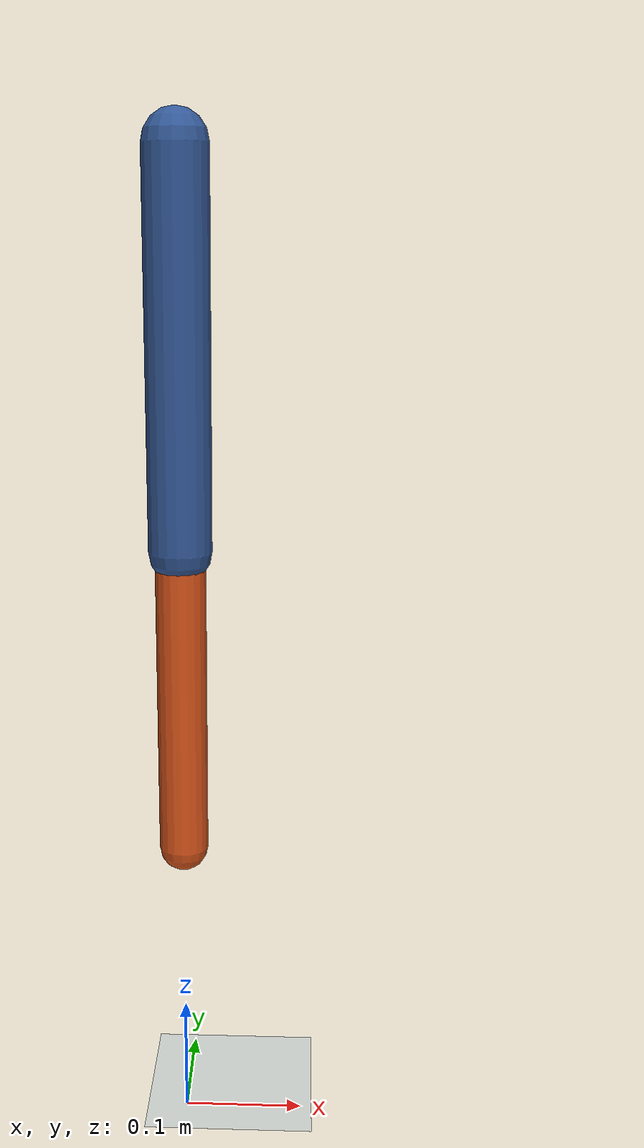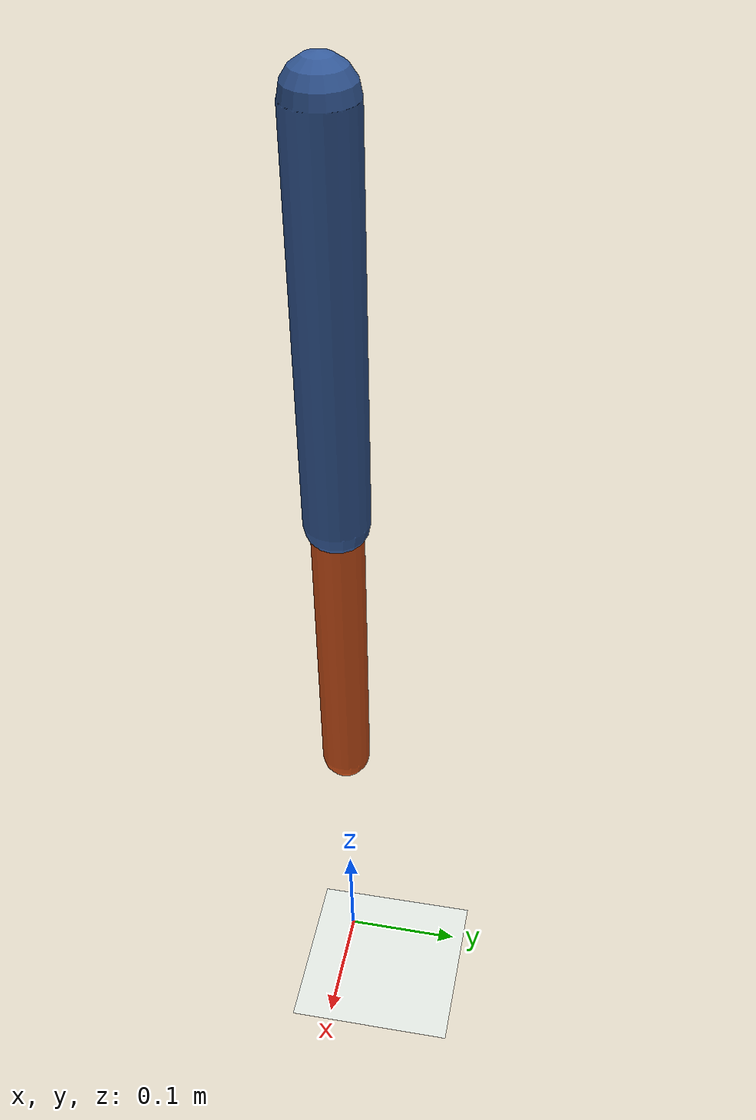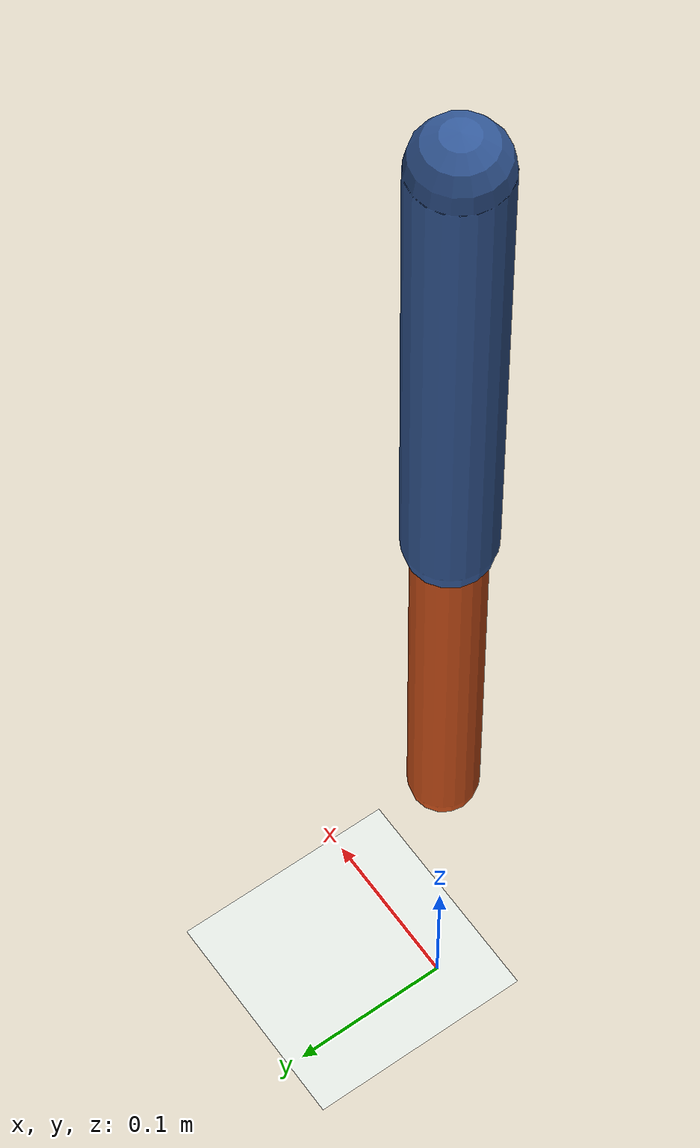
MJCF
<mujoco model="tutorial_tree">
  <compiler angle="radian" autolimits="true"/>
  <option timestep="0.002"/>

  <worldbody>
    <light pos="0 -1 2" dir="0 0.5 -1"/>
    <geom name="floor" type="plane" size="1 1 0.05" rgba=".86 .88 .86 1"/>

    <!-- A body's pos and orientation are relative to its parent body. -->
    <body name="link1" pos="0 0 0.8">
      <joint name="shoulder" type="hinge" axis="0 1 0" damping="0.05"/>
      <!-- fromto: the capsule runs from the first point to the second, in link1's frame. -->
      <geom name="upper" type="capsule" fromto="0 0 0 0 0 -0.3" size="0.025" rgba=".2 .35 .6 1"/>

      <body name="link2" pos="0 0 -0.3">
        <joint name="elbow" type="hinge" axis="0 1 0" range="-2 2" damping="0.05"/>
        <geom name="lower" type="capsule" fromto="0 0 0 0 0 -0.25" size="0.02" rgba=".85 .33 .1 1"/>
        <!-- Sites are frames with no physics: markers for sensors, targets and cameras. -->
        <site name="tip" pos="0 0 -0.25" size="0.012" rgba="1 .8 0 1"/>
      </body>
    </body>
  </worldbody>

  <sensor>
    <framepos name="tip_pos" objtype="site" objname="tip"/>
  </sensor>

  <keyframe>
    <key name="swing" qpos="1.0 -0.5"/>
  </keyframe>
</mujoco>
